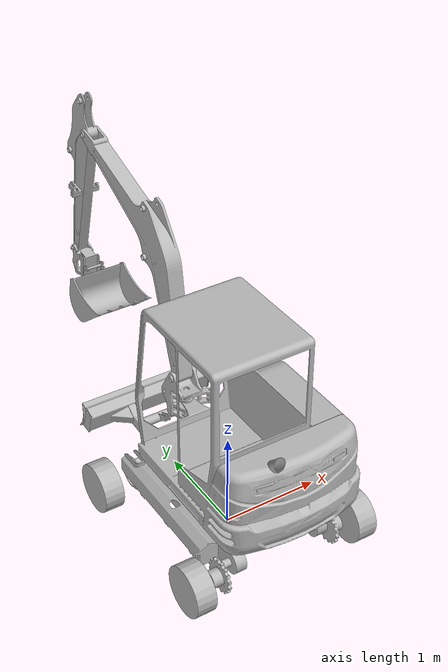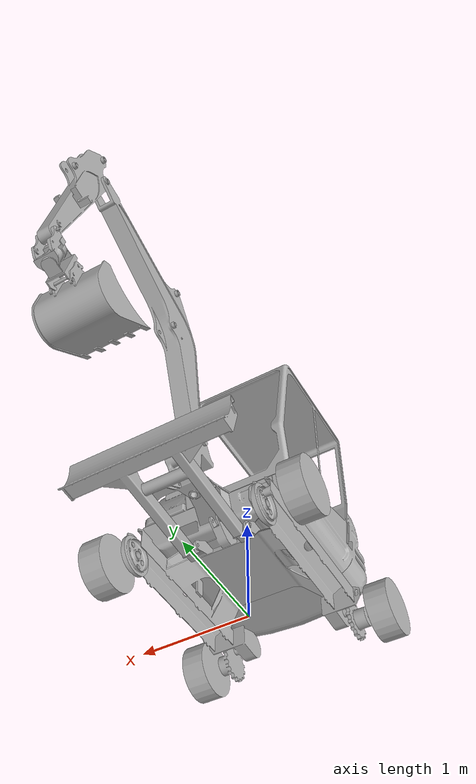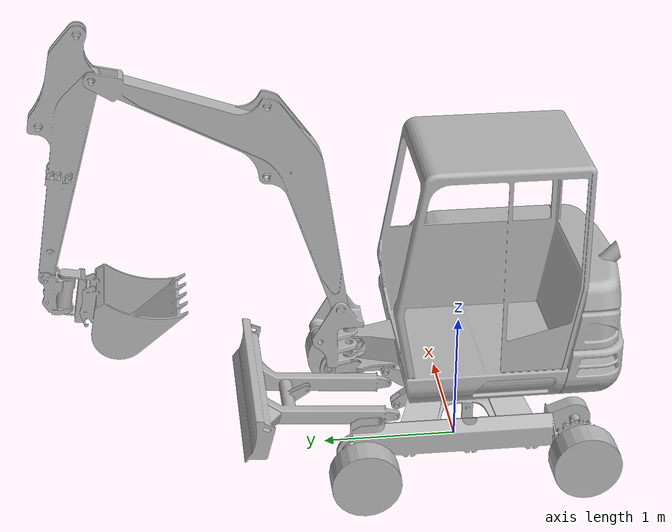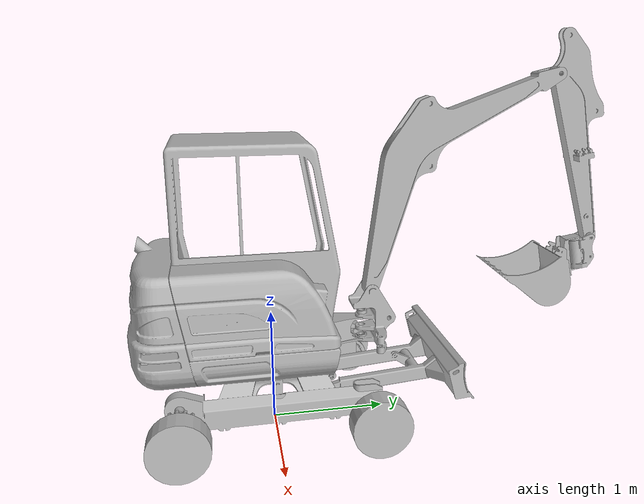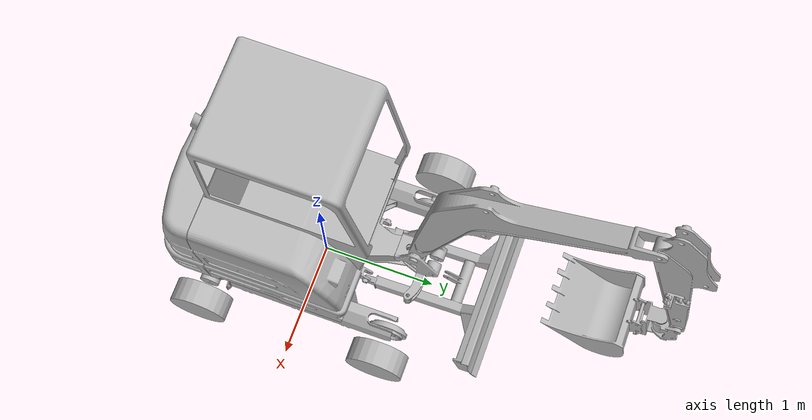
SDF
<sdf version='1.7'>
  <model name='excavator'>
    <link name='base_link'>
      <inertial>
        <pose>-0.0068 -0.1255 0.3635 0 -0 0</pose>
        <mass>459.117</mass>
        <inertia>
          <ixx>103.543</ixx>
          <ixy>2.86899</ixy>
          <ixz>-0.269186</ixz>
          <iyy>71.5504</iyy>
          <iyz>-8.78817</iyz>
          <izz>164.718</izz>
        </inertia>
      </inertial>
      <collision name='base_link_fixed_joint_lump__turret_base_collision'>
        <pose>0 0 0.55 0 -0 0</pose>
        <geometry>
          <mesh>
            <scale>1 1 1</scale>
            <uri>file:///home/moog-2/nav2_ws/install/sambot_description/share/sambot_description/meshes/compact_excavator_frame_body.stl</uri>
          </mesh>
        </geometry>
      </collision>
      <visual name='base_link_fixed_joint_lump__turret_base_visual'>
        <pose>0 0 0.55 0 -0 0</pose>
        <geometry>
          <mesh>
            <scale>1 1 1</scale>
            <uri>file:///home/moog-2/nav2_ws/install/sambot_description/share/sambot_description/meshes/compact_excavator_frame_body.stl</uri>
          </mesh>
        </geometry>
      </visual>
    </link>
    <joint name='excavator_slew' type='revolute'>
      <pose relative_to='base_link'>0 0 0.65 -0 -0 -3.1415</pose>
      <parent>base_link</parent>
      <child>cabin_base</child>
      <axis>
        <xyz>0 0 1</xyz>
        <limit>
          <effort>100000</effort>
          <velocity>1</velocity>
          <lower>-1e+16</lower>
          <upper>1e+16</upper>
        </limit>
        <dynamics>
          <damping>10000</damping>
          <friction>0.2</friction>
          <spring_reference>0</spring_reference>
          <spring_stiffness>0</spring_stiffness>
        </dynamics>
      </axis>
    </joint>
    <link name='cabin_base'>
      <pose relative_to='excavator_slew'>0 0 0 0 -0 0</pose>
      <inertial>
        <pose>-0.1469 0.4412 0.4509 0 -0 0</pose>
        <mass>9732.8</mass>
        <inertia>
          <ixx>3175.17</ixx>
          <ixy>-269.973</ixy>
          <ixz>167.618</ixz>
          <iyy>2627.63</iyy>
          <iyz>-193.855</iyz>
          <izz>3742.62</izz>
        </inertia>
      </inertial>
      <collision name='cabin_base_collision'>
        <pose>0.1592 -0.2513 0.2814 0 -0 0</pose>
        <geometry>
          <mesh>
            <scale>1 1 1</scale>
            <uri>file:///home/moog-2/nav2_ws/install/sambot_description/share/sambot_description/meshes/compact_excavator_cabin_body.stl</uri>
          </mesh>
        </geometry>
      </collision>
      <visual name='cabin_base_visual'>
        <pose>0.1592 -0.2513 0.2814 0 -0 0</pose>
        <geometry>
          <mesh>
            <scale>1 1 1</scale>
            <uri>file:///home/moog-2/nav2_ws/install/sambot_description/share/sambot_description/meshes/compact_excavator_cabin_body.stl</uri>
          </mesh>
        </geometry>
      </visual>
    </link>
    <joint name='cabin_to_swing' type='revolute'>
      <pose relative_to='cabin_base'>-0.040708 -0.806736 0.3804 3.14159 0 0</pose>
      <parent>cabin_base</parent>
      <child>swing_base</child>
      <axis>
        <xyz>0 0 1</xyz>
        <limit>
          <lower>-0.1</lower>
          <upper>0.1</upper>
          <effort>100000</effort>
          <velocity>1</velocity>
        </limit>
        <dynamics>
          <damping>10000</damping>
          <friction>0.2</friction>
          <spring_reference>0</spring_reference>
          <spring_stiffness>0</spring_stiffness>
        </dynamics>
      </axis>
    </joint>
    <link name='swing_base'>
      <pose relative_to='cabin_to_swing'>0 0 0 0 -0 0</pose>
      <inertial>
        <pose>-0.02603 0.106723 0.097554 0 -0 0</pose>
        <mass>98.1402</mass>
        <inertia>
          <ixx>2.60858</ixx>
          <ixy>0.0402273</ixy>
          <ixz>0.421368</ixz>
          <iyy>3.16652</iyy>
          <iyz>-0.159164</iyz>
          <izz>1.789</izz>
        </inertia>
      </inertial>
      <collision name='swing_base_collision'>
        <pose>0 0.075 -0.15 -3.14 -0 -0</pose>
        <geometry>
          <mesh>
            <scale>1 1 1</scale>
            <uri>file:///home/moog-2/nav2_ws/install/sambot_description/share/sambot_description/meshes/part01_pin_1.stl</uri>
          </mesh>
        </geometry>
      </collision>
      <visual name='swing_base_visual'>
        <pose>0 0.075 -0.15 -3.14 -0 -0</pose>
        <geometry>
          <mesh>
            <scale>1 1 1</scale>
            <uri>file:///home/moog-2/nav2_ws/install/sambot_description/share/sambot_description/meshes/part01_pin_1.stl</uri>
          </mesh>
        </geometry>
      </visual>
    </link>
    <joint name='swing_to_boom' type='revolute'>
      <pose relative_to='swing_base'>0.08 0.075 -0.15 -1.5708 0.392858 -1.5708</pose>
      <parent>swing_base</parent>
      <child>boom_base</child>
      <axis>
        <xyz>0 0 1</xyz>
        <limit>
          <lower>-0.4</lower>
          <upper>1</upper>
          <effort>100000</effort>
          <velocity>1</velocity>
        </limit>
        <dynamics>
          <damping>10000</damping>
          <friction>0.2</friction>
          <spring_reference>0</spring_reference>
          <spring_stiffness>0</spring_stiffness>
        </dynamics>
      </axis>
    </joint>
    <link name='boom_base'>
      <pose relative_to='swing_to_boom'>0 0 0 0 -0 0</pose>
      <inertial>
        <pose>-0.040079 1.21533 -0.079873 0 -0 0</pose>
        <mass>694.178</mass>
        <inertia>
          <ixx>242.812</ixx>
          <ixy>71.3709</ixy>
          <ixz>0.00659056</ixz>
          <iyy>49.6413</iyy>
          <iyz>-0.0342601</iyz>
          <izz>289.837</izz>
        </inertia>
      </inertial>
      <collision name='boom_base_collision'>
        <pose>0 -0 -0.08 -1.57 0 0</pose>
        <geometry>
          <mesh>
            <scale>1 1 1</scale>
            <uri>file:///home/moog-2/nav2_ws/install/sambot_description/share/sambot_description/meshes/part02.stl</uri>
          </mesh>
        </geometry>
      </collision>
      <visual name='boom_base_visual'>
        <pose>0 -0 -0.08 -1.57 0 0</pose>
        <geometry>
          <mesh>
            <scale>1 1 1</scale>
            <uri>file:///home/moog-2/nav2_ws/install/sambot_description/share/sambot_description/meshes/part02.stl</uri>
          </mesh>
        </geometry>
      </visual>
    </link>
    <joint name='boom_to_arm' type='revolute'>
      <pose relative_to='boom_base'>-0.84 2.355 -0.135 3.14159 0 2.55556</pose>
      <parent>boom_base</parent>
      <child>arm_base</child>
      <axis>
        <xyz>0 0 1</xyz>
        <limit>
          <lower>-0.5</lower>
          <upper>1.57</upper>
          <effort>100000</effort>
          <velocity>1</velocity>
        </limit>
        <dynamics>
          <damping>10000</damping>
          <friction>0.2</friction>
          <spring_reference>0</spring_reference>
          <spring_stiffness>0</spring_stiffness>
        </dynamics>
      </axis>
    </joint>
    <link name='arm_base'>
      <pose relative_to='boom_to_arm'>0 0 0 0 -0 0</pose>
      <inertial>
        <pose>0.108662 -0.601648 -0.055167 0 -0 0</pose>
        <mass>265.349</mass>
        <inertia>
          <ixx>57.5991</ixx>
          <ixy>0.0784426</ixy>
          <ixz>0.00498263</ixz>
          <iyy>1.8969</iyy>
          <iyz>0.024599</iyz>
          <izz>58.8687</izz>
        </inertia>
      </inertial>
      <collision name='arm_base_collision'>
        <pose>0 -0 -0.055 1.57 -0 0</pose>
        <geometry>
          <mesh>
            <scale>1 1 1</scale>
            <uri>file:///home/moog-2/nav2_ws/install/sambot_description/share/sambot_description/meshes/part03.stl</uri>
          </mesh>
        </geometry>
      </collision>
      <visual name='arm_base_visual'>
        <pose>0 -0 -0.055 1.57 -0 0</pose>
        <geometry>
          <mesh>
            <scale>1 1 1</scale>
            <uri>file:///home/moog-2/nav2_ws/install/sambot_description/share/sambot_description/meshes/part03.stl</uri>
          </mesh>
        </geometry>
      </visual>
    </link>
    <joint name='arm_to_bucket' type='revolute'>
      <pose relative_to='arm_base'>0.12 -1.54033 0 3.14159 0 -1.59635</pose>
      <parent>arm_base</parent>
      <child>bucket_base</child>
      <axis>
        <xyz>0 0 1</xyz>
        <limit>
          <lower>-1.22173</lower>
          <upper>0.872665</upper>
          <effort>100000</effort>
          <velocity>1</velocity>
        </limit>
        <dynamics>
          <damping>10000</damping>
          <friction>0.2</friction>
          <spring_reference>0</spring_reference>
          <spring_stiffness>0</spring_stiffness>
        </dynamics>
      </axis>
    </joint>
    <link name='bucket_base'>
      <pose relative_to='arm_to_bucket'>0 0 0 0 -0 0</pose>
      <inertial>
        <pose>0.213638 0.426181 0.055071 0 -0 0</pose>
        <mass>132.708</mass>
        <inertia>
          <ixx>14.0357</ixx>
          <ixy>-1.66524</ixy>
          <ixz>0.00202705</ixz>
          <iyy>6.85497</iyy>
          <iyz>0.00404371</iyz>
          <izz>11.6109</izz>
        </inertia>
      </inertial>
      <collision name='bucket_base_collision'>
        <pose>0.06 0.14 0.055 -3.14 -1.5708 0</pose>
        <geometry>
          <mesh>
            <scale>1 1 1</scale>
            <uri>file:///home/moog-2/nav2_ws/install/sambot_description/share/sambot_description/meshes/part04.stl</uri>
          </mesh>
        </geometry>
      </collision>
      <collision name='bucket_base_collision_1'>
        <pose>0.078718 0.979611 0.055 -1.57 0 3</pose>
        <geometry>
          <mesh>
            <scale>1 1 1</scale>
            <uri>file:///home/moog-2/nav2_ws/install/sambot_description/share/sambot_description/meshes/bucket.stl</uri>
          </mesh>
        </geometry>
      </collision>
      <collision name='bucket_base_collision_2'>
        <pose>0.17 0.308 0.055 1.57398 -1.5708 0</pose>
        <geometry>
          <mesh>
            <scale>1 1 1</scale>
            <uri>file:///home/moog-2/nav2_ws/install/sambot_description/share/sambot_description/meshes/bucket_mount.stl</uri>
          </mesh>
        </geometry>
      </collision>
      <visual name='bucket_base_visual'>
        <pose>0.06 0.14 0.055 -3.14 -1.5708 0</pose>
        <geometry>
          <mesh>
            <scale>1 1 1</scale>
            <uri>file:///home/moog-2/nav2_ws/install/sambot_description/share/sambot_description/meshes/part04.stl</uri>
          </mesh>
        </geometry>
      </visual>
      <visual name='bucket_base_visual_1'>
        <pose>0.078718 0.979611 0.055 -1.57 0 3</pose>
        <geometry>
          <mesh>
            <scale>1 1 1</scale>
            <uri>file:///home/moog-2/nav2_ws/install/sambot_description/share/sambot_description/meshes/bucket.stl</uri>
          </mesh>
        </geometry>
      </visual>
      <visual name='bucket_base_visual_2'>
        <pose>0.17 0.308 0.055 1.57398 -1.5708 0</pose>
        <geometry>
          <mesh>
            <scale>1 1 1</scale>
            <uri>file:///home/moog-2/nav2_ws/install/sambot_description/share/sambot_description/meshes/bucket_mount.stl</uri>
          </mesh>
        </geometry>
      </visual>
    </link>
    <joint name='left_front_to_turret' type='revolute'>
      <pose relative_to='base_link'>-0.613 0.8 0.275 1.5708 -1.02229 -1.5708</pose>
      <parent>base_link</parent>
      <child>left_front_wheel_link</child>
      <axis>
        <xyz>0 0 1</xyz>
        <limit>
          <effort>100000</effort>
          <velocity>1</velocity>
          <lower>-1e+16</lower>
          <upper>1e+16</upper>
        </limit>
        <dynamics>
          <damping>10000</damping>
          <friction>0.2</friction>
          <spring_reference>0</spring_reference>
          <spring_stiffness>0</spring_stiffness>
        </dynamics>
      </axis>
    </joint>
    <link name='left_front_wheel_link'>
      <pose relative_to='left_front_to_turret'>0 0 0 0 -0 0</pose>
      <inertial>
        <pose>0 -0 0.298647 0 -0 0</pose>
        <mass>4337.21</mass>
        <inertia>
          <ixx>83.9878</ixx>
          <ixy>1.06292e-17</ixy>
          <ixz>5.46891e-16</ixz>
          <iyy>83.9878</iyy>
          <iyz>-6.58135e-16</iyz>
          <izz>135.286</izz>
        </inertia>
      </inertial>
      <collision name='left_front_wheel_link_collision'>
        <pose>0 -0 -0.0325 0 1.5708 0</pose>
        <geometry>
          <mesh>
            <scale>1 1 1</scale>
            <uri>file:///home/moog-2/nav2_ws/install/sambot_description/share/sambot_description/meshes/compact_excavator_front_wheel.stl</uri>
          </mesh>
        </geometry>
      </collision>
      <collision name='left_front_wheel_link_fixed_joint_lump__left_skid_wheel_free_collision_1'>
        <pose>0 0 0.3 0 -0 0</pose>
        <geometry>
          <cylinder>
            <length>0.2</length>
            <radius>0.25</radius>
          </cylinder>
        </geometry>
      </collision>
      <visual name='left_front_wheel_link_visual'>
        <pose>0 -0 -0.0325 0 1.5708 0</pose>
        <geometry>
          <mesh>
            <scale>1 1 1</scale>
            <uri>file:///home/moog-2/nav2_ws/install/sambot_description/share/sambot_description/meshes/compact_excavator_front_wheel.stl</uri>
          </mesh>
        </geometry>
      </visual>
      <visual name='left_front_wheel_link_fixed_joint_lump__left_skid_wheel_free_visual_1'>
        <pose>0 0 0.3 0 -0 0</pose>
        <geometry>
          <cylinder>
            <length>0.2</length>
            <radius>0.25</radius>
          </cylinder>
        </geometry>
      </visual>
    </link>
    <joint name='left_spinning_to_turret' type='revolute'>
      <pose relative_to='base_link'>-0.574 -0.8 0.275 1.5708 -0.354748 1.5708</pose>
      <parent>base_link</parent>
      <child>left_spinning_wheel_link</child>
      <axis>
        <xyz>0 0 1</xyz>
        <limit>
          <effort>100000</effort>
          <velocity>1</velocity>
          <lower>-1e+16</lower>
          <upper>1e+16</upper>
        </limit>
        <dynamics>
          <damping>10000</damping>
          <friction>0.2</friction>
          <spring_reference>0</spring_reference>
          <spring_stiffness>0</spring_stiffness>
        </dynamics>
      </axis>
    </joint>
    <link name='left_spinning_wheel_link'>
      <pose relative_to='left_spinning_to_turret'>0 0 0 0 -0 0</pose>
      <inertial>
        <pose>0 -0 -0.29791 0 -0 0</pose>
        <mass>4355.55</mass>
        <inertia>
          <ixx>84.3763</ixx>
          <ixy>2.13927e-17</ixy>
          <ixz>-0.000172457</ixz>
          <iyy>84.3762</iyy>
          <iyz>2.48343e-15</iyz>
          <izz>135.28</izz>
        </inertia>
      </inertial>
      <collision name='left_spinning_wheel_link_collision'>
        <pose>0 -0 -0.015 1.57319 -0 0</pose>
        <geometry>
          <mesh>
            <scale>1 1 1</scale>
            <uri>file:///home/moog-2/nav2_ws/install/sambot_description/share/sambot_description/meshes/compact_excavator_main_drive_wheel.stl</uri>
          </mesh>
        </geometry>
      </collision>
      <collision name='left_spinning_wheel_link_fixed_joint_lump__left_skid_wheel_spinning_collision_1'>
        <pose>0 0 -0.3 0 -0 0</pose>
        <geometry>
          <cylinder>
            <length>0.2</length>
            <radius>0.25</radius>
          </cylinder>
        </geometry>
      </collision>
      <visual name='left_spinning_wheel_link_visual'>
        <pose>0 -0 -0.015 1.57319 -0 0</pose>
        <geometry>
          <mesh>
            <scale>1 1 1</scale>
            <uri>file:///home/moog-2/nav2_ws/install/sambot_description/share/sambot_description/meshes/compact_excavator_main_drive_wheel.stl</uri>
          </mesh>
        </geometry>
      </visual>
      <visual name='left_spinning_wheel_link_fixed_joint_lump__left_skid_wheel_spinning_visual_1'>
        <pose>0 0 -0.3 0 -0 0</pose>
        <geometry>
          <cylinder>
            <length>0.2</length>
            <radius>0.25</radius>
          </cylinder>
        </geometry>
      </visual>
    </link>
    <joint name='plow_to_base' type='revolute'>
      <pose relative_to='base_link'>-0.255 0.488 0.345 1.5708 -1.31956 -1.5708</pose>
      <parent>base_link</parent>
      <child>push_blade_base</child>
      <axis>
        <xyz>0 0 1</xyz>
        <limit>
          <lower>0</lower>
          <upper>0.2</upper>
          <effort>100000</effort>
          <velocity>1</velocity>
        </limit>
        <dynamics>
          <damping>10000</damping>
          <friction>0.2</friction>
          <spring_reference>0</spring_reference>
          <spring_stiffness>0</spring_stiffness>
        </dynamics>
      </axis>
    </joint>
    <link name='push_blade_base'>
      <pose relative_to='plow_to_base'>0 0 0 0 -0 0</pose>
      <inertial>
        <pose>-0.109705 0.880751 -0.255 0 -0 0</pose>
        <mass>147.018</mass>
        <inertia>
          <ixx>31.8811</ixx>
          <ixy>0.912474</ixy>
          <ixz>-1.62121e-05</ixz>
          <iyy>21.1962</iyy>
          <iyz>4.99001e-06</iyz>
          <izz>13.1692</izz>
        </inertia>
      </inertial>
      <collision name='push_blade_base_collision'>
        <pose>-0.021564 1.07999 -0.255 -3.14 -1.5708 0</pose>
        <geometry>
          <mesh>
            <scale>1 1 1</scale>
            <uri>file:///home/moog-2/nav2_ws/install/sambot_description/share/sambot_description/meshes/push_blade_bucket.stl</uri>
          </mesh>
        </geometry>
      </collision>
      <visual name='push_blade_base_visual'>
        <pose>-0.021564 1.07999 -0.255 -3.14 -1.5708 0</pose>
        <geometry>
          <mesh>
            <scale>1 1 1</scale>
            <uri>file:///home/moog-2/nav2_ws/install/sambot_description/share/sambot_description/meshes/push_blade_bucket.stl</uri>
          </mesh>
        </geometry>
      </visual>
    </link>
    <joint name='right_front_to_turret' type='revolute'>
      <pose relative_to='base_link'>0.548 0.8 0.275 1.5708 -0 -1.5708</pose>
      <parent>base_link</parent>
      <child>right_front_wheel_link</child>
      <axis>
        <xyz>0 0 1</xyz>
        <limit>
          <effort>100000</effort>
          <velocity>1</velocity>
          <lower>-1e+16</lower>
          <upper>1e+16</upper>
        </limit>
        <dynamics>
          <damping>10000</damping>
          <friction>0.2</friction>
          <spring_reference>0</spring_reference>
          <spring_stiffness>0</spring_stiffness>
        </dynamics>
      </axis>
    </joint>
    <link name='right_front_wheel_link'>
      <pose relative_to='right_front_to_turret'>0 0 0 0 -0 0</pose>
      <inertial>
        <pose>-0 0 -0.298912 0 -0 0</pose>
        <mass>4337.21</mass>
        <inertia>
          <ixx>83.3024</ixx>
          <ixy>-1.06292e-17</ixy>
          <ixz>1.5741e-16</ixz>
          <iyy>83.3024</iyy>
          <iyz>6.97476e-33</iyz>
          <izz>135.286</izz>
        </inertia>
      </inertial>
      <collision name='right_front_wheel_link_collision'>
        <pose>-0 0 -0.0325 -3.14 -1.5708 0</pose>
        <geometry>
          <mesh>
            <scale>1 1 1</scale>
            <uri>file:///home/moog-2/nav2_ws/install/sambot_description/share/sambot_description/meshes/compact_excavator_front_wheel.stl</uri>
          </mesh>
        </geometry>
      </collision>
      <collision name='right_front_wheel_link_fixed_joint_lump__right_skid_wheel_free_collision_1'>
        <pose>0 0 -0.3 0 -0 0</pose>
        <geometry>
          <cylinder>
            <length>0.2</length>
            <radius>0.25</radius>
          </cylinder>
        </geometry>
      </collision>
      <visual name='right_front_wheel_link_visual'>
        <pose>-0 0 -0.0325 -3.14 -1.5708 0</pose>
        <geometry>
          <mesh>
            <scale>1 1 1</scale>
            <uri>file:///home/moog-2/nav2_ws/install/sambot_description/share/sambot_description/meshes/compact_excavator_front_wheel.stl</uri>
          </mesh>
        </geometry>
      </visual>
      <visual name='right_front_wheel_link_fixed_joint_lump__right_skid_wheel_free_visual_1'>
        <pose>0 0 -0.3 0 -0 0</pose>
        <geometry>
          <cylinder>
            <length>0.2</length>
            <radius>0.25</radius>
          </cylinder>
        </geometry>
      </visual>
    </link>
    <joint name='right_spinning_to_turret' type='revolute'>
      <pose relative_to='base_link'>0.574 -0.8 0.275 1.5708 -1.29848 -1.5708</pose>
      <parent>base_link</parent>
      <child>right_spinning_wheel_link</child>
      <axis>
        <xyz>0 0 1</xyz>
        <limit>
          <effort>10000</effort>
          <velocity>1</velocity>
          <lower>-1e+16</lower>
          <upper>1e+16</upper>
        </limit>
        <dynamics>
          <damping>10000</damping>
          <friction>0.2</friction>
          <spring_reference>0</spring_reference>
          <spring_stiffness>0</spring_stiffness>
        </dynamics>
      </axis>
    </joint>
    <link name='right_spinning_wheel_link'>
      <pose relative_to='right_spinning_to_turret'>0 0 0 0 -0 0</pose>
      <inertial>
        <pose>0 -0 -0.29791 0 -0 0</pose>
        <mass>4355.55</mass>
        <inertia>
          <ixx>84.3763</ixx>
          <ixy>6.34579e-18</ixy>
          <ixz>-0.000172457</ixz>
          <iyy>84.3762</iyy>
          <iyz>2.29551e-15</iyz>
          <izz>135.28</izz>
        </inertia>
      </inertial>
      <collision name='right_spinning_wheel_link_collision'>
        <pose>-0 0 -0.015 1.57 -0 0</pose>
        <geometry>
          <mesh>
            <scale>1 1 1</scale>
            <uri>file:///home/moog-2/nav2_ws/install/sambot_description/share/sambot_description/meshes/compact_excavator_main_drive_wheel.stl</uri>
          </mesh>
        </geometry>
      </collision>
      <collision name='right_spinning_wheel_link_fixed_joint_lump__right_skid_wheel_spinning_collision_1'>
        <pose>0 0 -0.3 0 -0 0</pose>
        <geometry>
          <cylinder>
            <length>0.2</length>
            <radius>0.25</radius>
          </cylinder>
        </geometry>
      </collision>
      <visual name='right_spinning_wheel_link_visual'>
        <pose>-0 0 -0.015 1.57 -0 0</pose>
        <geometry>
          <mesh>
            <scale>1 1 1</scale>
            <uri>file:///home/moog-2/nav2_ws/install/sambot_description/share/sambot_description/meshes/compact_excavator_main_drive_wheel.stl</uri>
          </mesh>
        </geometry>
      </visual>
      <visual name='right_spinning_wheel_link_fixed_joint_lump__right_skid_wheel_spinning_visual_1'>
        <pose>0 0 -0.3 0 -0 0</pose>
        <geometry>
          <cylinder>
            <length>0.2</length>
            <radius>0.25</radius>
          </cylinder>
        </geometry>
      </visual>
    </link>
    <static>0</static>
    <plugin name='gz_ros2_control::GazeboSimROS2ControlPlugin' filename='gz_ros2_control-system'>
      <parameters>/home/moog-2/nav2_ws/install/sambot_description/share/sambot_description/params/vc.yaml</parameters>
      <controller_manager_name>controller_manager</controller_manager_name>
    </plugin>
  </model>
</sdf>
